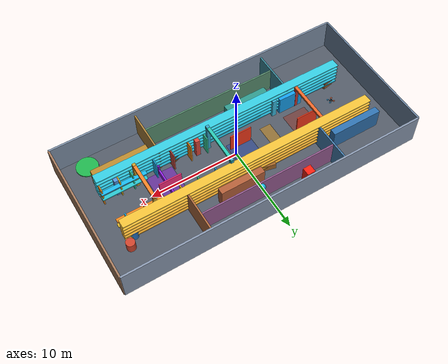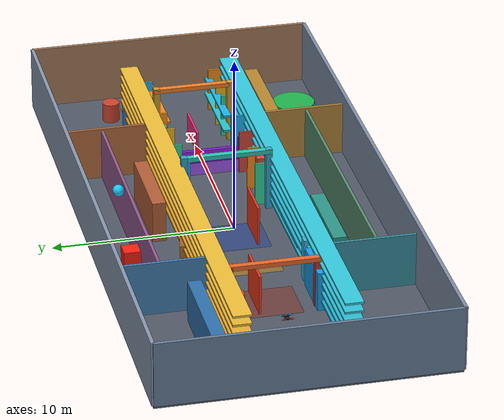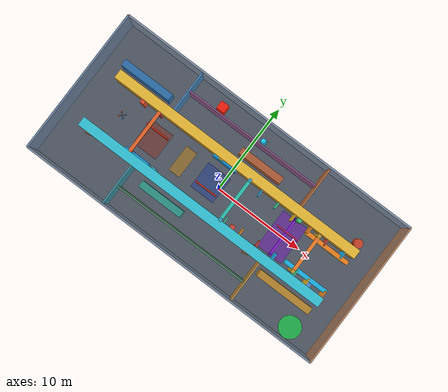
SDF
<?xml version="1.0"?>
<sdf version="1.10">
  <world name="xq_complex_compositional_warehouse">
    <gravity>0 0 -9.80665</gravity>
    <physics name="xq_complex_400hz_physics" type="ode">
      <max_step_size>0.0025</max_step_size>
      <real_time_factor>1.0</real_time_factor>
      <real_time_update_rate>400</real_time_update_rate>
    </physics>
    <plugin filename="gz-sim-physics-system" name="gz::sim::systems::Physics"/>
    <plugin filename="gz-sim-user-commands-system" name="gz::sim::systems::UserCommands"/>
    <plugin filename="gz-sim-scene-broadcaster-system" name="gz::sim::systems::SceneBroadcaster"/>
    <plugin filename="gz-sim-sensors-system" name="gz::sim::systems::Sensors"><render_engine>ogre2</render_engine></plugin>
    <plugin filename="gz-sim-imu-system" name="gz::sim::systems::Imu"/>
    <scene>
      <ambient>0.62 0.66 0.72</ambient>
      <background>0.10 0.12 0.16</background>
      <shadows>true</shadows>
    </scene>
    <light name="complex_sun" type="directional">
      <pose>0 0 12 0 0 0</pose><diffuse>0.78 0.82 0.90 1</diffuse>
      <specular>0.25 0.25 0.28 1</specular><direction>-0.35 0.25 -1</direction>
    </light>
    <light name="west_high_bay" type="point">
      <pose>-9 0 5 0 0 0</pose><diffuse>0.75 0.86 1 1</diffuse><attenuation><range>15</range><constant>0.4</constant><linear>0.04</linear><quadratic>0.01</quadratic></attenuation>
    </light>
    <light name="east_high_bay" type="point">
      <pose>9 0 5 0 0 0</pose><diffuse>1 0.84 0.63 1</diffuse><attenuation><range>15</range><constant>0.4</constant><linear>0.04</linear><quadratic>0.01</quadratic></attenuation>
    </light>

    <!-- Independent compositional 3D challenge scene. Roof intentionally
         omitted; perimeter walls retained. -->
    <model name="xq_complex_compositional_shell">
      <static>true</static>
      <link name="shell">
        <collision name="floor_c"><pose>0 0 -0.08 0 0 0</pose><geometry><box><size>34 16 0.16</size></box></geometry></collision>
        <visual name="floor_v"><pose>0 0 -0.08 0 0 0</pose><geometry><box><size>34 16 0.16</size></box></geometry><material><diffuse>0.32 0.35 0.40 1</diffuse><specular>0.12 0.12 0.12 1</specular></material></visual>
        <collision name="north_wall_c"><pose>0 8 1.8 0 0 0</pose><geometry><box><size>34 0.20 3.6</size></box></geometry></collision>
        <visual name="north_wall_v"><pose>0 8 1.8 0 0 0</pose><geometry><box><size>34 0.20 3.6</size></box></geometry><material><diffuse>0.53 0.59 0.68 1</diffuse></material></visual>
        <collision name="south_wall_c"><pose>0 -8 1.8 0 0 0</pose><geometry><box><size>34 0.20 3.6</size></box></geometry></collision>
        <visual name="south_wall_v"><pose>0 -8 1.8 0 0 0</pose><geometry><box><size>34 0.20 3.6</size></box></geometry><material><diffuse>0.49 0.56 0.65 1</diffuse></material></visual>
        <collision name="west_wall_c"><pose>-17 0 1.8 0 0 0</pose><geometry><box><size>0.20 16 3.6</size></box></geometry></collision>
        <visual name="west_wall_v"><pose>-17 0 1.8 0 0 0</pose><geometry><box><size>0.20 16 3.6</size></box></geometry><material><diffuse>0.41 0.50 0.61 1</diffuse></material></visual>
        <collision name="east_wall_c"><pose>17 0 1.8 0 0 0</pose><geometry><box><size>0.20 16 3.6</size></box></geometry></collision>
        <visual name="east_wall_v"><pose>17 0 1.8 0 0 0</pose><geometry><box><size>0.20 16 3.6</size></box></geometry><material><diffuse>0.65 0.48 0.36 1</diffuse></material></visual>

        <!-- Four side rooms with 3.2 m-wide open central aisle. -->
        <collision name="nw_partition_c"><pose>-8.0 5.25 1.5 0 0 0</pose><geometry><box><size>0.18 5.3 3.0</size></box></geometry></collision>
        <visual name="nw_partition_v"><pose>-8.0 5.25 1.5 0 0 0</pose><geometry><box><size>0.18 5.3 3.0</size></box></geometry><material><diffuse>0.27 0.50 0.70 1</diffuse></material></visual>
        <collision name="sw_partition_c"><pose>-8.0 -5.25 1.5 0 0 0</pose><geometry><box><size>0.18 5.3 3.0</size></box></geometry></collision>
        <visual name="sw_partition_v"><pose>-8.0 -5.25 1.5 0 0 0</pose><geometry><box><size>0.18 5.3 3.0</size></box></geometry><material><diffuse>0.22 0.55 0.62 1</diffuse></material></visual>
        <collision name="ne_partition_c"><pose>7.5 5.25 1.5 0 0 0</pose><geometry><box><size>0.18 5.3 3.0</size></box></geometry></collision>
        <visual name="ne_partition_v"><pose>7.5 5.25 1.5 0 0 0</pose><geometry><box><size>0.18 5.3 3.0</size></box></geometry><material><diffuse>0.70 0.42 0.24 1</diffuse></material></visual>
        <collision name="se_partition_c"><pose>7.5 -5.25 1.5 0 0 0</pose><geometry><box><size>0.18 5.3 3.0</size></box></geometry></collision>
        <visual name="se_partition_v"><pose>7.5 -5.25 1.5 0 0 0</pose><geometry><box><size>0.18 5.3 3.0</size></box></geometry><material><diffuse>0.69 0.52 0.23 1</diffuse></material></visual>
        <collision name="north_crosswall_c"><pose>-0.25 5.8 1.45 0 0 0</pose><geometry><box><size>15.3 0.16 2.9</size></box></geometry></collision>
        <visual name="north_crosswall_v"><pose>-0.25 5.8 1.45 0 0 0</pose><geometry><box><size>15.3 0.16 2.9</size></box></geometry><material><diffuse>0.58 0.35 0.56 1</diffuse></material></visual>
        <collision name="south_crosswall_c"><pose>-0.25 -5.8 1.45 0 0 0</pose><geometry><box><size>15.3 0.16 2.9</size></box></geometry></collision>
        <visual name="south_crosswall_v"><pose>-0.25 -5.8 1.45 0 0 0</pose><geometry><box><size>15.3 0.16 2.9</size></box></geometry><material><diffuse>0.34 0.55 0.43 1</diffuse></material></visual>

        <collision name="north_lower_observation_rack_c"><pose>0 2.90 0.55 0 0 0</pose><geometry><box><size>29.0 1.00 0.12</size></box></geometry></collision>
        <visual name="north_lower_observation_rack_v"><pose>0 2.90 0.55 0 0 0</pose><geometry><box><size>29.0 1.00 0.12</size></box></geometry><material><diffuse>0.82 0.58 0.14 1</diffuse></material></visual>
        <collision name="south_lower_observation_rack_c"><pose>0 -2.90 0.55 0 0 0</pose><geometry><box><size>29.0 1.00 0.12</size></box></geometry></collision>
        <visual name="south_lower_observation_rack_v"><pose>0 -2.90 0.55 0 0 0</pose><geometry><box><size>29.0 1.00 0.12</size></box></geometry><material><diffuse>0.12 0.66 0.78 1</diffuse></material></visual>
        <collision name="north_lower_middle_observation_rack_c"><pose>0 2.90 1.05 0 0 0</pose><geometry><box><size>29.0 1.00 0.12</size></box></geometry></collision>
        <visual name="north_lower_middle_observation_rack_v"><pose>0 2.90 1.05 0 0 0</pose><geometry><box><size>29.0 1.00 0.12</size></box></geometry><material><diffuse>0.85 0.62 0.16 1</diffuse></material></visual>
        <collision name="south_lower_middle_observation_rack_c"><pose>0 -2.90 1.05 0 0 0</pose><geometry><box><size>29.0 1.00 0.12</size></box></geometry></collision>
        <visual name="south_lower_middle_observation_rack_v"><pose>0 -2.90 1.05 0 0 0</pose><geometry><box><size>29.0 1.00 0.12</size></box></geometry><material><diffuse>0.14 0.69 0.80 1</diffuse></material></visual>
        <collision name="north_middle_observation_rack_c"><pose>0 2.90 1.55 0 0 0</pose><geometry><box><size>29.0 1.00 0.12</size></box></geometry></collision>
        <visual name="north_middle_observation_rack_v"><pose>0 2.90 1.55 0 0 0</pose><geometry><box><size>29.0 1.00 0.12</size></box></geometry><material><diffuse>0.88 0.65 0.18 1</diffuse></material></visual>
        <collision name="south_middle_observation_rack_c"><pose>0 -2.90 1.55 0 0 0</pose><geometry><box><size>29.0 1.00 0.12</size></box></geometry></collision>
        <visual name="south_middle_observation_rack_v"><pose>0 -2.90 1.55 0 0 0</pose><geometry><box><size>29.0 1.00 0.12</size></box></geometry><material><diffuse>0.15 0.72 0.82 1</diffuse></material></visual>
        <collision name="north_upper_middle_observation_rack_c"><pose>0 2.90 2.05 0 0 0</pose><geometry><box><size>29.0 1.00 0.12</size></box></geometry></collision>
        <visual name="north_upper_middle_observation_rack_v"><pose>0 2.90 2.05 0 0 0</pose><geometry><box><size>29.0 1.00 0.12</size></box></geometry><material><diffuse>0.90 0.68 0.19 1</diffuse></material></visual>
        <collision name="south_upper_middle_observation_rack_c"><pose>0 -2.90 2.05 0 0 0</pose><geometry><box><size>29.0 1.00 0.12</size></box></geometry></collision>
        <visual name="south_upper_middle_observation_rack_v"><pose>0 -2.90 2.05 0 0 0</pose><geometry><box><size>29.0 1.00 0.12</size></box></geometry><material><diffuse>0.17 0.74 0.83 1</diffuse></material></visual>
        <collision name="north_upper_observation_rack_c"><pose>0 2.90 2.55 0 0 0</pose><geometry><box><size>29.0 1.00 0.12</size></box></geometry></collision>
        <visual name="north_upper_observation_rack_v"><pose>0 2.90 2.55 0 0 0</pose><geometry><box><size>29.0 1.00 0.12</size></box></geometry><material><diffuse>0.92 0.72 0.20 1</diffuse></material></visual>
        <collision name="south_upper_observation_rack_c"><pose>0 -2.90 2.55 0 0 0</pose><geometry><box><size>29.0 1.00 0.12</size></box></geometry></collision>
        <visual name="south_upper_observation_rack_v"><pose>0 -2.90 2.55 0 0 0</pose><geometry><box><size>29.0 1.00 0.12</size></box></geometry><material><diffuse>0.18 0.76 0.84 1</diffuse></material></visual>
        <collision name="north_high_observation_rack_c"><pose>0 2.90 3.05 0 0 0</pose><geometry><box><size>29.0 1.00 0.12</size></box></geometry></collision>
        <visual name="north_high_observation_rack_v"><pose>0 2.90 3.05 0 0 0</pose><geometry><box><size>29.0 1.00 0.12</size></box></geometry><material><diffuse>0.94 0.75 0.22 1</diffuse></material></visual>
        <collision name="south_high_observation_rack_c"><pose>0 -2.90 3.05 0 0 0</pose><geometry><box><size>29.0 1.00 0.12</size></box></geometry></collision>
        <visual name="south_high_observation_rack_v"><pose>0 -2.90 3.05 0 0 0</pose><geometry><box><size>29.0 1.00 0.12</size></box></geometry><material><diffuse>0.20 0.79 0.87 1</diffuse></material></visual>

        <collision name="north_observation_shelf_c"><pose>1.0 2.60 0.99 0 0 0</pose><geometry><box><size>4.0 0.45 0.12</size></box></geometry></collision>
        <visual name="north_observation_shelf_v"><pose>1.0 2.60 0.99 0 0 0</pose><geometry><box><size>4.0 0.45 0.12</size></box></geometry><material><diffuse>0.82 0.72 0.22 1</diffuse></material></visual>
        <collision name="south_observation_shelf_c"><pose>1.0 -2.60 0.99 0 0 0</pose><geometry><box><size>4.0 0.45 0.12</size></box></geometry></collision>
        <visual name="south_observation_shelf_v"><pose>1.0 -2.60 0.99 0 0 0</pose><geometry><box><size>4.0 0.45 0.12</size></box></geometry><material><diffuse>0.24 0.72 0.78 1</diffuse></material></visual>

        <collision name="north_midwest_observation_shelf_c"><pose>-2.75 2.60 0.99 0 0 0</pose><geometry><box><size>3.50 0.45 0.12</size></box></geometry></collision>
        <visual name="north_midwest_observation_shelf_v"><pose>-2.75 2.60 0.99 0 0 0</pose><geometry><box><size>3.50 0.45 0.12</size></box></geometry><material><diffuse>0.84 0.70 0.18 1</diffuse></material></visual>
        <collision name="south_midwest_observation_shelf_c"><pose>-2.75 -2.60 0.99 0 0 0</pose><geometry><box><size>3.50 0.45 0.12</size></box></geometry></collision>
        <visual name="south_midwest_observation_shelf_v"><pose>-2.75 -2.60 0.99 0 0 0</pose><geometry><box><size>3.50 0.45 0.12</size></box></geometry><material><diffuse>0.18 0.72 0.78 1</diffuse></material></visual>

        <collision name="north_x_board1_c"><pose>3.55 2.25 1.25 0 0 0</pose><geometry><box><size>0.12 1.10 2.50</size></box></geometry></collision>
        <visual name="north_x_board1_v"><pose>3.55 2.25 1.25 0 0 0</pose><geometry><box><size>0.12 1.10 2.50</size></box></geometry><material><diffuse>0.10 0.72 0.96 1</diffuse><emissive>0.01 0.08 0.14 1</emissive></material></visual>
        <collision name="south_x_board0_c"><pose>2.45 -2.25 1.25 0 0 0</pose><geometry><box><size>0.12 1.10 2.50</size></box></geometry></collision>
        <visual name="south_x_board0_v"><pose>2.45 -2.25 1.25 0 0 0</pose><geometry><box><size>0.12 1.10 2.50</size></box></geometry><material><diffuse>0.20 0.84 0.62 1</diffuse><emissive>0.01 0.12 0.07 1</emissive></material></visual>
        <collision name="south_x_board1_c"><pose>4.35 -2.25 1.25 0 0 0</pose><geometry><box><size>0.12 1.10 2.50</size></box></geometry></collision>
        <visual name="south_x_board1_v"><pose>4.35 -2.25 1.25 0 0 0</pose><geometry><box><size>0.12 1.10 2.50</size></box></geometry><material><diffuse>0.96 0.56 0.10 1</diffuse><emissive>0.14 0.05 0.01 1</emissive></material></visual>
        <collision name="north_x_board2_c"><pose>5.55 2.25 1.25 0 0 0</pose><geometry><box><size>0.12 1.10 2.50</size></box></geometry></collision>
        <visual name="north_x_board2_v"><pose>5.55 2.25 1.25 0 0 0</pose><geometry><box><size>0.12 1.10 2.50</size></box></geometry><material><diffuse>0.20 0.84 0.62 1</diffuse><emissive>0.01 0.12 0.07 1</emissive></material></visual>
        <collision name="south_x_board2_c"><pose>6.35 -2.25 1.25 0 0 0</pose><geometry><box><size>0.12 1.10 2.50</size></box></geometry></collision>
        <visual name="south_x_board2_v"><pose>6.35 -2.25 1.25 0 0 0</pose><geometry><box><size>0.12 1.10 2.50</size></box></geometry><material><diffuse>0.80 0.28 0.24 1</diffuse><emissive>0.10 0.02 0.02 1</emissive></material></visual>
        <collision name="north_x_board3_c"><pose>7.55 2.25 1.25 0 0 0</pose><geometry><box><size>0.12 1.10 2.50</size></box></geometry></collision>
        <visual name="north_x_board3_v"><pose>7.55 2.25 1.25 0 0 0</pose><geometry><box><size>0.12 1.10 2.50</size></box></geometry><material><diffuse>0.94 0.72 0.12 1</diffuse><emissive>0.12 0.08 0.01 1</emissive></material></visual>
        <collision name="south_x_board3_c"><pose>8.35 -2.25 1.25 0 0 0</pose><geometry><box><size>0.12 1.10 2.50</size></box></geometry></collision>
        <visual name="south_x_board3_v"><pose>8.35 -2.25 1.25 0 0 0</pose><geometry><box><size>0.12 1.10 2.50</size></box></geometry><material><diffuse>0.10 0.72 0.96 1</diffuse><emissive>0.01 0.08 0.14 1</emissive></material></visual>
        <collision name="north_x_board4_c"><pose>9.55 2.25 1.25 0 0 0</pose><geometry><box><size>0.12 1.10 2.50</size></box></geometry></collision>
        <visual name="north_x_board4_v"><pose>9.55 2.25 1.25 0 0 0</pose><geometry><box><size>0.12 1.10 2.50</size></box></geometry><material><diffuse>0.96 0.56 0.10 1</diffuse><emissive>0.14 0.05 0.01 1</emissive></material></visual>
        <collision name="south_x_board4_c"><pose>10.95 -2.25 1.25 0 0 0</pose><geometry><box><size>0.12 1.10 2.50</size></box></geometry></collision>
        <visual name="south_x_board4_v"><pose>10.95 -2.25 1.25 0 0 0</pose><geometry><box><size>0.12 1.10 2.50</size></box></geometry><material><diffuse>0.20 0.84 0.62 1</diffuse><emissive>0.01 0.12 0.07 1</emissive></material></visual>
        <collision name="north_x_board5_c"><pose>11.55 2.25 1.25 0 0 0</pose><geometry><box><size>0.12 1.10 2.50</size></box></geometry></collision>
        <visual name="north_x_board5_v"><pose>11.55 2.25 1.25 0 0 0</pose><geometry><box><size>0.12 1.10 2.50</size></box></geometry><material><diffuse>0.80 0.28 0.24 1</diffuse><emissive>0.10 0.02 0.02 1</emissive></material></visual>
        <collision name="south_x_board5_c"><pose>12.35 -2.25 1.25 0 0 0</pose><geometry><box><size>0.12 1.10 2.50</size></box></geometry></collision>
        <visual name="south_x_board5_v"><pose>12.35 -2.25 1.25 0 0 0</pose><geometry><box><size>0.12 1.10 2.50</size></box></geometry><material><diffuse>0.94 0.72 0.12 1</diffuse><emissive>0.12 0.08 0.01 1</emissive></material></visual>
        <collision name="north_x_board6_c"><pose>13.55 2.25 1.25 0 0 0</pose><geometry><box><size>0.12 1.10 2.50</size></box></geometry></collision>
        <visual name="north_x_board6_v"><pose>13.55 2.25 1.25 0 0 0</pose><geometry><box><size>0.12 1.10 2.50</size></box></geometry><material><diffuse>0.10 0.72 0.96 1</diffuse><emissive>0.01 0.08 0.14 1</emissive></material></visual>
        <collision name="south_x_board6_c"><pose>14.35 -2.25 1.25 0 0 0</pose><geometry><box><size>0.12 1.10 2.50</size></box></geometry></collision>
        <visual name="south_x_board6_v"><pose>14.35 -2.25 1.25 0 0 0</pose><geometry><box><size>0.12 1.10 2.50</size></box></geometry><material><diffuse>0.96 0.56 0.10 1</diffuse><emissive>0.14 0.05 0.01 1</emissive></material></visual>

        <collision name="north_final_observation_shelf_c"><pose>12.0 1.75 0.99 0 0 0</pose><geometry><box><size>5.0 0.45 0.12</size></box></geometry></collision>
        <visual name="north_final_observation_shelf_v"><pose>12.0 1.75 0.99 0 0 0</pose><geometry><box><size>5.0 0.45 0.12</size></box></geometry><material><diffuse>0.88 0.72 0.18 1</diffuse></material></visual>
        <collision name="south_final_observation_shelf_c"><pose>12.0 -1.75 0.99 0 0 0</pose><geometry><box><size>5.0 0.45 0.12</size></box></geometry></collision>
        <visual name="south_final_observation_shelf_v"><pose>12.0 -1.75 0.99 0 0 0</pose><geometry><box><size>5.0 0.45 0.12</size></box></geometry><material><diffuse>0.16 0.76 0.80 1</diffuse></material></visual>
        <collision name="north_final_upper_observation_shelf_c"><pose>12.0 1.75 1.90 0 0 0</pose><geometry><box><size>5.0 0.45 0.12</size></box></geometry></collision>
        <visual name="north_final_upper_observation_shelf_v"><pose>12.0 1.75 1.90 0 0 0</pose><geometry><box><size>5.0 0.45 0.12</size></box></geometry><material><diffuse>0.95 0.52 0.12 1</diffuse></material></visual>
        <collision name="south_final_upper_observation_shelf_c"><pose>12.0 -1.75 1.90 0 0 0</pose><geometry><box><size>5.0 0.45 0.12</size></box></geometry></collision>
        <visual name="south_final_upper_observation_shelf_v"><pose>12.0 -1.75 1.90 0 0 0</pose><geometry><box><size>5.0 0.45 0.12</size></box></geometry><material><diffuse>0.10 0.72 0.92 1</diffuse></material></visual>

        <collision name="integrity_panel_west_c"><pose>-8.25 0.81 1.20 0 0 0</pose><geometry><box><size>2.50 0.12 2.20</size></box></geometry></collision>
        <visual name="integrity_panel_west_v"><pose>-8.25 0.81 1.20 0 0 0</pose><geometry><box><size>2.50 0.12 2.20</size></box></geometry><material><diffuse>0.96 0.22 0.10 1</diffuse><emissive>0.16 0.02 0.01 1</emissive></material></visual>
        <collision name="geometry_fins_west_c"><pose>-8.25 -2.43 1.10 0 0 0</pose><geometry><box><size>2.80 0.45 2.20</size></box></geometry></collision>
        <visual name="geometry_fins_west_v"><pose>-8.25 -2.43 1.10 0 0 0</pose><geometry><box><size>2.80 0.45 2.20</size></box></geometry><material><diffuse>0.08 0.62 0.92 1</diffuse><emissive>0.01 0.08 0.16 1</emissive></material></visual>
        <collision name="integrity_panel_east_c"><pose>-1.0 -0.81 1.20 0 0 0</pose><geometry><box><size>2.50 0.12 2.20</size></box></geometry></collision>
        <visual name="integrity_panel_east_v"><pose>-1.0 -0.81 1.20 0 0 0</pose><geometry><box><size>2.50 0.12 2.20</size></box></geometry><material><diffuse>0.96 0.22 0.10 1</diffuse><emissive>0.16 0.02 0.01 1</emissive></material></visual>
        <collision name="geometry_fins_east_c"><pose>-1.0 2.43 1.10 0 0 0</pose><geometry><box><size>2.80 0.45 2.20</size></box></geometry></collision>
        <visual name="geometry_fins_east_v"><pose>-1.0 2.43 1.10 0 0 0</pose><geometry><box><size>2.80 0.45 2.20</size></box></geometry><material><diffuse>0.08 0.62 0.92 1</diffuse><emissive>0.01 0.08 0.16 1</emissive></material></visual>

        <!-- Visual-only floor bands identify the two integrity decisions and
             the dynamic-obstacle crossing from the open-roof Gazebo view. -->
        <visual name="west_integrity_zone_v"><pose>-8.25 0 0.015 0 0 0</pose><geometry><box><size>2.8 3.0 0.018</size></box></geometry><material><diffuse>0.60 0.16 0.08 0.44</diffuse><emissive>0.07 0.01 0.00 1</emissive></material></visual>
        <visual name="dynamic_crossing_zone_v"><pose>-4.5 0 0.016 0 0 0</pose><geometry><box><size>1.3 3.0 0.020</size></box></geometry><material><diffuse>0.86 0.56 0.04 0.48</diffuse><emissive>0.10 0.05 0.00 1</emissive></material></visual>
        <visual name="east_integrity_zone_v"><pose>-1.0 0 0.015 0 0 0</pose><geometry><box><size>2.8 3.0 0.018</size></box></geometry><material><diffuse>0.10 0.24 0.66 0.44</diffuse><emissive>0.01 0.03 0.10 1</emissive></material></visual>

        <collision name="spatial_integrity_hurdle_c"><pose>8.00 0 0.375 0 0 0</pose><geometry><box><size>0.18 4.00 0.75</size></box></geometry></collision>
        <visual name="spatial_integrity_hurdle_v"><pose>8.00 0 0.375 0 0 0</pose><geometry><box><size>0.18 4.00 0.75</size></box></geometry><material><diffuse>0.58 0.12 0.92 1</diffuse><emissive>0.12 0.01 0.24 1</emissive></material></visual>

        <collision name="elevated_north_integrity_panel_c"><pose>8.00 0.56 1.90 0 0 0</pose><geometry><box><size>2.50 0.12 1.20</size></box></geometry></collision>
        <visual name="elevated_north_integrity_panel_v"><pose>8.00 0.56 1.90 0 0 0</pose><geometry><box><size>2.50 0.12 1.20</size></box></geometry><material><diffuse>0.96 0.18 0.48 1</diffuse><emissive>0.20 0.01 0.08 1</emissive></material></visual>
        <collision name="spatial_deck_north_leg_c"><pose>8.00 2.15 0.65 0 0 0</pose><geometry><box><size>0.24 0.24 1.30</size></box></geometry></collision>
        <visual name="spatial_deck_north_leg_v"><pose>8.00 2.15 0.65 0 0 0</pose><geometry><box><size>0.24 0.24 1.30</size></box></geometry><material><diffuse>0.40 0.08 0.70 1</diffuse></material></visual>
        <collision name="spatial_deck_south_leg_c"><pose>8.00 -2.15 0.65 0 0 0</pose><geometry><box><size>0.24 0.24 1.30</size></box></geometry></collision>
        <visual name="spatial_deck_south_leg_v"><pose>8.00 -2.15 0.65 0 0 0</pose><geometry><box><size>0.24 0.24 1.30</size></box></geometry><material><diffuse>0.40 0.08 0.70 1</diffuse></material></visual>
        <visual name="spatial_integrity_zone_v"><pose>8.00 0 0.017 0 0 0</pose><geometry><box><size>3.00 4.40 0.022</size></box></geometry><material><diffuse>0.50 0.08 0.82 0.48</diffuse><emissive>0.08 0.00 0.15 1</emissive></material></visual>

        <!-- Alternating shelves and work cells. -->
        <collision name="rack_nw_c"><pose>-12.0 4.2 1.15 0 0 0</pose><geometry><box><size>5.8 0.75 2.3</size></box></geometry></collision>
        <visual name="rack_nw_v"><pose>-12.0 4.2 1.15 0 0 0</pose><geometry><box><size>5.8 0.75 2.3</size></box></geometry><material><diffuse>0.18 0.44 0.68 1</diffuse></material></visual>
        <collision name="rack_sw_c"><pose>-3.8 -4.25 1.15 0 0 0</pose><geometry><box><size>5.0 0.75 2.3</size></box></geometry></collision>
        <visual name="rack_sw_v"><pose>-3.8 -4.25 1.15 0 0 0</pose><geometry><box><size>5.0 0.75 2.3</size></box></geometry><material><diffuse>0.18 0.59 0.54 1</diffuse></material></visual>
        <collision name="rack_ne_c"><pose>2.0 4.25 1.15 0 0 0</pose><geometry><box><size>5.0 0.75 2.3</size></box></geometry></collision>
        <visual name="rack_ne_v"><pose>2.0 4.25 1.15 0 0 0</pose><geometry><box><size>5.0 0.75 2.3</size></box></geometry><material><diffuse>0.70 0.37 0.22 1</diffuse></material></visual>
        <collision name="rack_se_c"><pose>11.2 -4.2 1.15 0 0 0</pose><geometry><box><size>6.2 0.75 2.3</size></box></geometry></collision>
        <visual name="rack_se_v"><pose>11.2 -4.2 1.15 0 0 0</pose><geometry><box><size>6.2 0.75 2.3</size></box></geometry><material><diffuse>0.72 0.53 0.18 1</diffuse></material></visual>

        <!-- Pillar array creates strong but nonuniform LiDAR observability. -->
        <collision name="p1_c"><pose>-11.0 2.25 1.2 0 0 0</pose><geometry><box><size>0.45 0.45 2.4</size></box></geometry></collision>
        <visual name="p1_v"><pose>-11.0 2.25 1.2 0 0 0</pose><geometry><box><size>0.45 0.45 2.4</size></box></geometry><material><diffuse>0.90 0.30 0.20 1</diffuse></material></visual>
        <collision name="p2_c"><pose>-6.2 -2.50 1.2 0 0 0</pose><geometry><box><size>0.50 0.50 2.4</size></box></geometry></collision>
        <visual name="p2_v"><pose>-6.2 -2.50 1.2 0 0 0</pose><geometry><box><size>0.50 0.50 2.4</size></box></geometry><material><diffuse>0.22 0.72 0.86 1</diffuse></material></visual>
        <collision name="p3_c"><pose>-1.5 2.50 1.2 0 0 0</pose><geometry><box><size>0.45 0.45 2.4</size></box></geometry></collision>
        <visual name="p3_v"><pose>-1.5 2.50 1.2 0 0 0</pose><geometry><box><size>0.45 0.45 2.4</size></box></geometry><material><diffuse>0.88 0.68 0.16 1</diffuse></material></visual>
        <collision name="p4_c"><pose>3.4 -2.25 1.2 0 0 0</pose><geometry><box><size>0.50 0.50 2.4</size></box></geometry></collision>
        <visual name="p4_v"><pose>3.4 -2.25 1.2 0 0 0</pose><geometry><box><size>0.50 0.50 2.4</size></box></geometry><material><diffuse>0.84 0.28 0.23 1</diffuse></material></visual>
        <collision name="p5_c"><pose>8.2 2.25 1.2 0 0 0</pose><geometry><box><size>0.45 0.45 2.4</size></box></geometry></collision>
        <visual name="p5_v"><pose>8.2 2.25 1.2 0 0 0</pose><geometry><box><size>0.45 0.45 2.4</size></box></geometry><material><diffuse>0.25 0.75 0.43 1</diffuse></material></visual>
        <collision name="p6_c"><pose>12.6 -2.25 1.2 0 0 0</pose><geometry><box><size>0.50 0.50 2.4</size></box></geometry></collision>
        <visual name="p6_v"><pose>12.6 -2.25 1.2 0 0 0</pose><geometry><box><size>0.50 0.50 2.4</size></box></geometry><material><diffuse>0.31 0.56 0.85 1</diffuse></material></visual>

        <!-- Three portal frames preserve a flyable opening while adding vertical structure. -->
        <collision name="gate1_n_c"><pose>-9.0 2.35 1.4 0 0 0</pose><geometry><box><size>0.35 0.35 2.8</size></box></geometry></collision>
        <visual name="gate1_n_v"><pose>-9.0 2.35 1.4 0 0 0</pose><geometry><box><size>0.35 0.35 2.8</size></box></geometry><material><diffuse>0.75 0.20 0.18 1</diffuse></material></visual>
        <collision name="gate1_s_c"><pose>-9.0 -2.35 1.4 0 0 0</pose><geometry><box><size>0.35 0.35 2.8</size></box></geometry></collision>
        <visual name="gate1_s_v"><pose>-9.0 -2.35 1.4 0 0 0</pose><geometry><box><size>0.35 0.35 2.8</size></box></geometry><material><diffuse>0.75 0.20 0.18 1</diffuse></material></visual>
        <collision name="gate1_top_c"><pose>-9.0 0 2.75 0 0 0</pose><geometry><box><size>0.35 5.05 0.25</size></box></geometry></collision>
        <visual name="gate1_top_v"><pose>-9.0 0 2.75 0 0 0</pose><geometry><box><size>0.35 5.05 0.25</size></box></geometry><material><diffuse>0.92 0.40 0.16 1</diffuse></material></visual>
        <collision name="gate2_n_c"><pose>2.0 2.35 1.8 0 0 0</pose><geometry><box><size>0.35 0.35 3.6</size></box></geometry></collision>
        <visual name="gate2_n_v"><pose>2.0 2.35 1.8 0 0 0</pose><geometry><box><size>0.35 0.35 3.6</size></box></geometry><material><diffuse>0.20 0.64 0.78 1</diffuse></material></visual>
        <collision name="gate2_s_c"><pose>2.0 -2.35 1.8 0 0 0</pose><geometry><box><size>0.35 0.35 3.6</size></box></geometry></collision>
        <visual name="gate2_s_v"><pose>2.0 -2.35 1.8 0 0 0</pose><geometry><box><size>0.35 0.35 3.6</size></box></geometry><material><diffuse>0.20 0.64 0.78 1</diffuse></material></visual>
        <collision name="gate2_top_c"><pose>2.0 0 3.45 0 0 0</pose><geometry><box><size>0.35 5.05 0.25</size></box></geometry></collision>
        <visual name="gate2_top_v"><pose>2.0 0 3.45 0 0 0</pose><geometry><box><size>0.35 5.05 0.25</size></box></geometry><material><diffuse>0.16 0.78 0.70 1</diffuse></material></visual>
        <collision name="gate3_n_c"><pose>10.5 2.10 1.8 0 0 0</pose><geometry><box><size>0.35 0.35 3.6</size></box></geometry></collision>
        <visual name="gate3_n_v"><pose>10.5 2.10 1.8 0 0 0</pose><geometry><box><size>0.35 0.35 3.6</size></box></geometry><material><diffuse>0.78 0.62 0.18 1</diffuse></material></visual>
        <collision name="gate3_s_c"><pose>10.5 -2.10 1.8 0 0 0</pose><geometry><box><size>0.35 0.35 3.6</size></box></geometry></collision>
        <visual name="gate3_s_v"><pose>10.5 -2.10 1.8 0 0 0</pose><geometry><box><size>0.35 0.35 3.6</size></box></geometry><material><diffuse>0.78 0.62 0.18 1</diffuse></material></visual>
        <collision name="gate3_top_c"><pose>10.5 0 3.45 0 0 0</pose><geometry><box><size>0.35 4.55 0.25</size></box></geometry></collision>
        <visual name="gate3_top_v"><pose>10.5 0 3.45 0 0 0</pose><geometry><box><size>0.35 4.55 0.25</size></box></geometry><material><diffuse>0.95 0.50 0.15 1</diffuse></material></visual>

        <!-- Low clutter remains outside the certified central tube. -->
        <collision name="crate1_c"><pose>-13.5 -3.0 0.45 0 0 0.18</pose><geometry><box><size>1.2 1.0 0.9</size></box></geometry></collision>
        <visual name="crate1_v"><pose>-13.5 -3.0 0.45 0 0 0.18</pose><geometry><box><size>1.2 1.0 0.9</size></box></geometry><material><diffuse>0.58 0.34 0.16 1</diffuse></material></visual>
        <collision name="crate2_c"><pose>-2.0 3.0 0.35 0 0 -0.22</pose><geometry><box><size>1.4 0.9 0.7</size></box></geometry></collision>
        <visual name="crate2_v"><pose>-2.0 3.0 0.35 0 0 -0.22</pose><geometry><box><size>1.4 0.9 0.7</size></box></geometry><material><diffuse>0.62 0.38 0.15 1</diffuse></material></visual>
        <collision name="crate3_c"><pose>6.0 -3.0 0.50 0 0 0.35</pose><geometry><box><size>1.1 1.1 1.0</size></box></geometry></collision>
        <visual name="crate3_v"><pose>6.0 -3.0 0.50 0 0 0.35</pose><geometry><box><size>1.1 1.1 1.0</size></box></geometry><material><diffuse>0.48 0.29 0.13 1</diffuse></material></visual>
        <collision name="barrel1_c"><pose>13.5 3.0 0.55 0 0 0</pose><geometry><cylinder><radius>0.48</radius><length>1.1</length></cylinder></geometry></collision>
        <visual name="barrel1_v"><pose>13.5 3.0 0.55 0 0 0</pose><geometry><cylinder><radius>0.48</radius><length>1.1</length></cylinder></geometry><material><diffuse>0.15 0.44 0.74 1</diffuse></material></visual>
        <collision name="barrel2_c"><pose>14.3 4.0 0.55 0 0 0</pose><geometry><cylinder><radius>0.48</radius><length>1.1</length></cylinder></geometry></collision>
        <visual name="barrel2_v"><pose>14.3 4.0 0.55 0 0 0</pose><geometry><cylinder><radius>0.48</radius><length>1.1</length></cylinder></geometry><material><diffuse>0.80 0.26 0.17 1</diffuse></material></visual>
        <collision name="landing_pad_c"><pose>14.0 -6.7 0.06 0 0 0</pose><geometry><cylinder><radius>1.2</radius><length>0.12</length></cylinder></geometry></collision>
        <visual name="landing_pad_v"><pose>14.0 -6.7 0.06 0 0 0</pose><geometry><cylinder><radius>1.2</radius><length>0.12</length></cylinder></geometry><material><diffuse>0.12 0.70 0.30 1</diffuse><emissive>0.02 0.18 0.06 1</emissive></material></visual>
      </link>
    </model>

    <model name="xq_p12_moving_obstacle">
      <static>false</static><pose>-4.5 6.6 1.0 0 0 0</pose>
      <link name="body"><gravity>false</gravity><inertial><mass>20</mass><inertia><ixx>8</ixx><iyy>8</iyy><izz>4</izz></inertia></inertial>
        <collision name="body_c"><geometry><box><size>0.9 0.9 2.0</size></box></geometry></collision>
        <visual name="body_v"><geometry><box><size>0.9 0.9 2.0</size></box></geometry><material><diffuse>0.98 0.12 0.06 1</diffuse><emissive>0.30 0.02 0.01 1</emissive></material></visual>
      </link>
      <plugin filename="libxq_p12_obstacle_motion_system.so" name="xq_gz_bridge::P12ObstacleMotionSystem">
        <x_m>-4.5</x_m><park_y_m>6.6</park_y_m><blocked_y_m>0.0</blocked_y_m><z_m>1.0</z_m>
        <enter_start_s>24.0</enter_start_s><enter_end_s>28.0</enter_end_s><leave_start_s>44.0</leave_start_s><leave_end_s>48.0</leave_end_s>
      </plugin>
    </model>

    <model name="xq_overhead_inspector">
      <static>false</static><pose>0.8 6.2 2.65 0 0 0</pose>
      <link name="body"><gravity>false</gravity><inertial><mass>8</mass><inertia><ixx>2</ixx><iyy>2</iyy><izz>2</izz></inertia></inertial>
        <collision name="body_c"><geometry><sphere><radius>0.32</radius></sphere></geometry></collision>
        <visual name="body_v"><geometry><sphere><radius>0.32</radius></sphere></geometry><material><diffuse>0.10 0.78 0.95 1</diffuse><emissive>0.02 0.35 0.50 1</emissive></material></visual>
      </link>
      <plugin filename="libxq_p12_obstacle_motion_system.so" name="xq_gz_bridge::P12ObstacleMotionSystem">
        <x_m>0.8</x_m><park_y_m>6.2</park_y_m><blocked_y_m>0.0</blocked_y_m><z_m>2.65</z_m>
        <enter_start_s>55.0</enter_start_s><enter_end_s>61.0</enter_end_s><leave_start_s>72.0</leave_start_s><leave_end_s>78.0</leave_end_s>
      </plugin>
    </model>

    <include><name>xq_agent_01</name><uri>model://xq_iris_mid360</uri><pose>-12 0 1.2 0 0 0</pose></include>
  </world>
</sdf>

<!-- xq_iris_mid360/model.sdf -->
<sdf version="1.10">
  <model name="xq_iris_mid360" canonical_link="xq_base_link">
    <static>false</static>
    <self_collide>false</self_collide>
    <allow_auto_disable>false</allow_auto_disable>

    <link name="xq_base_link">
      <gravity>false</gravity>
      <inertial>
        <mass>1.40</mass>
        <inertia>
          <ixx>0.030</ixx>
          <ixy>0.0</ixy>
          <ixz>0.0</ixz>
          <iyy>0.030</iyy>
          <iyz>0.0</iyz>
          <izz>0.055</izz>
        </inertia>
      </inertial>

      <collision name="xq_body_collision">
        <geometry>
          <box>
            <size>0.30 0.22 0.10</size>
          </box>
        </geometry>
      </collision>
      <visual name="xq_body_visual">
        <geometry>
          <box>
            <size>0.30 0.22 0.10</size>
          </box>
        </geometry>
        <material>
          <ambient>0.035 0.045 0.060 1</ambient>
          <diffuse>0.055 0.075 0.100 1</diffuse>
          <specular>0.35 0.35 0.35 1</specular>
        </material>
      </visual>

      <collision name="xq_arm_ne_sw_collision">
        <pose>0 0 0.015 0 0 0.78539816339</pose>
        <geometry>
          <box>
            <size>0.66 0.035 0.028</size>
          </box>
        </geometry>
      </collision>
      <visual name="xq_arm_ne_sw_visual">
        <pose>0 0 0.015 0 0 0.78539816339</pose>
        <geometry>
          <box>
            <size>0.66 0.035 0.028</size>
          </box>
        </geometry>
        <material>
          <ambient>0.12 0.13 0.15 1</ambient>
          <diffuse>0.18 0.20 0.23 1</diffuse>
        </material>
      </visual>

      <collision name="xq_arm_nw_se_collision">
        <pose>0 0 0.015 0 0 -0.78539816339</pose>
        <geometry>
          <box>
            <size>0.66 0.035 0.028</size>
          </box>
        </geometry>
      </collision>
      <visual name="xq_arm_nw_se_visual">
        <pose>0 0 0.015 0 0 -0.78539816339</pose>
        <geometry>
          <box>
            <size>0.66 0.035 0.028</size>
          </box>
        </geometry>
        <material>
          <ambient>0.12 0.13 0.15 1</ambient>
          <diffuse>0.18 0.20 0.23 1</diffuse>
        </material>
      </visual>

      <visual name="xq_rotor_front_left_visual">
        <pose>0.235 0.235 0.045 0 0 0</pose>
        <geometry>
          <cylinder>
            <radius>0.105</radius>
            <length>0.008</length>
          </cylinder>
        </geometry>
        <transparency>0.35</transparency>
        <material>
          <ambient>0.08 0.55 0.78 1</ambient>
          <diffuse>0.08 0.55 0.78 1</diffuse>
        </material>
      </visual>
      <visual name="xq_rotor_front_right_visual">
        <pose>0.235 -0.235 0.045 0 0 0</pose>
        <geometry>
          <cylinder>
            <radius>0.105</radius>
            <length>0.008</length>
          </cylinder>
        </geometry>
        <transparency>0.35</transparency>
        <material>
          <ambient>0.08 0.55 0.78 1</ambient>
          <diffuse>0.08 0.55 0.78 1</diffuse>
        </material>
      </visual>
      <visual name="xq_rotor_rear_left_visual">
        <pose>-0.235 0.235 0.045 0 0 0</pose>
        <geometry>
          <cylinder>
            <radius>0.105</radius>
            <length>0.008</length>
          </cylinder>
        </geometry>
        <transparency>0.35</transparency>
        <material>
          <ambient>0.78 0.29 0.10 1</ambient>
          <diffuse>0.78 0.29 0.10 1</diffuse>
        </material>
      </visual>
      <visual name="xq_rotor_rear_right_visual">
        <pose>-0.235 -0.235 0.045 0 0 0</pose>
        <geometry>
          <cylinder>
            <radius>0.105</radius>
            <length>0.008</length>
          </cylinder>
        </geometry>
        <transparency>0.35</transparency>
        <material>
          <ambient>0.78 0.29 0.10 1</ambient>
          <diffuse>0.78 0.29 0.10 1</diffuse>
        </material>
      </visual>
    </link>

    <link name="xq_mid360_link">
      <pose relative_to="xq_base_link">0.04 0 0.135 0 0 0</pose>
      <gravity>false</gravity>
      <inertial>
        <mass>0.265</mass>
        <inertia>
          <ixx>0.00045</ixx>
          <ixy>0.0</ixy>
          <ixz>0.0</ixz>
          <iyy>0.00045</iyy>
          <iyz>0.0</iyz>
          <izz>0.00055</izz>
        </inertia>
      </inertial>
      <collision name="xq_mid360_collision">
        <geometry>
          <cylinder>
            <radius>0.040</radius>
            <length>0.065</length>
          </cylinder>
        </geometry>
      </collision>
      <visual name="xq_mid360_visual">
        <geometry>
          <cylinder>
            <radius>0.040</radius>
            <length>0.065</length>
          </cylinder>
        </geometry>
        <material>
          <ambient>0.02 0.02 0.025 1</ambient>
          <diffuse>0.035 0.035 0.045 1</diffuse>
          <specular>0.55 0.55 0.55 1</specular>
        </material>
      </visual>

      <!-- MID-360-like aggregate raster: 720 x 32 x 10 Hz ~= 230 kpoints/s. -->
      <sensor name="xq_mid360_lidar" type="gpu_lidar">
        <!-- Gazebo publishes LaserScan here and PointCloudPacked on /points. -->
        <topic>/xq/lidar</topic>
        <always_on>true</always_on>
        <update_rate>10</update_rate>
        <visualize>false</visualize>
        <lidar>
          <scan>
            <horizontal>
              <samples>720</samples>
              <resolution>1</resolution>
              <min_angle>-3.14159265359</min_angle>
              <max_angle>3.14159265359</max_angle>
            </horizontal>
            <vertical>
              <samples>32</samples>
              <resolution>1</resolution>
              <min_angle>-0.12217304764</min_angle>
              <max_angle>0.90757121104</max_angle>
            </vertical>
          </scan>
          <range>
            <min>0.10</min>
            <max>40.0</max>
            <resolution>0.02</resolution>
          </range>
          <noise>
            <type>gaussian</type>
            <mean>0.0</mean>
            <stddev>0.015</stddev>
          </noise>
        </lidar>
      </sensor>
    </link>

    <joint name="xq_mid360_joint" type="fixed">
      <parent>xq_base_link</parent>
      <child>xq_mid360_link</child>
    </joint>

    <link name="xq_imu_link">
      <pose relative_to="xq_base_link">0 0 0.015 0 0 0</pose>
      <gravity>false</gravity>
      <inertial>
        <mass>0.020</mass>
        <inertia>
          <ixx>0.00001</ixx>
          <ixy>0.0</ixy>
          <ixz>0.0</ixz>
          <iyy>0.00001</iyy>
          <iyz>0.0</iyz>
          <izz>0.00001</izz>
        </inertia>
      </inertial>
      <sensor name="xq_imu_sensor" type="imu">
        <topic>/xq/imu</topic>
        <always_on>true</always_on>
        <update_rate>200</update_rate>
        <imu>
          <angular_velocity>
            <x><noise type="gaussian"><mean>0</mean><stddev>0.00020</stddev></noise></x>
            <y><noise type="gaussian"><mean>0</mean><stddev>0.00020</stddev></noise></y>
            <z><noise type="gaussian"><mean>0</mean><stddev>0.00020</stddev></noise></z>
          </angular_velocity>
          <linear_acceleration>
            <x><noise type="gaussian"><mean>0</mean><stddev>0.0020</stddev></noise></x>
            <y><noise type="gaussian"><mean>0</mean><stddev>0.0020</stddev></noise></y>
            <z><noise type="gaussian"><mean>0</mean><stddev>0.0020</stddev></noise></z>
          </linear_acceleration>
        </imu>
      </sensor>
    </link>

    <joint name="xq_imu_joint" type="fixed">
      <parent>xq_base_link</parent>
      <child>xq_imu_link</child>
    </joint>

    <plugin filename="gz-sim-velocity-control-system"
            name="gz::sim::systems::VelocityControl">
      <initial_linear>0 0 0</initial_linear>
      <initial_angular>0 0 0</initial_angular>
    </plugin>

    <plugin filename="gz-sim-odometry-publisher-system"
            name="gz::sim::systems::OdometryPublisher">
      <dimensions>3</dimensions>
      <odom_publish_frequency>50</odom_publish_frequency>
      <odom_frame>xq_world</odom_frame>
      <robot_base_frame>xq_base_link</robot_base_frame>
    </plugin>
  </model>
</sdf>
